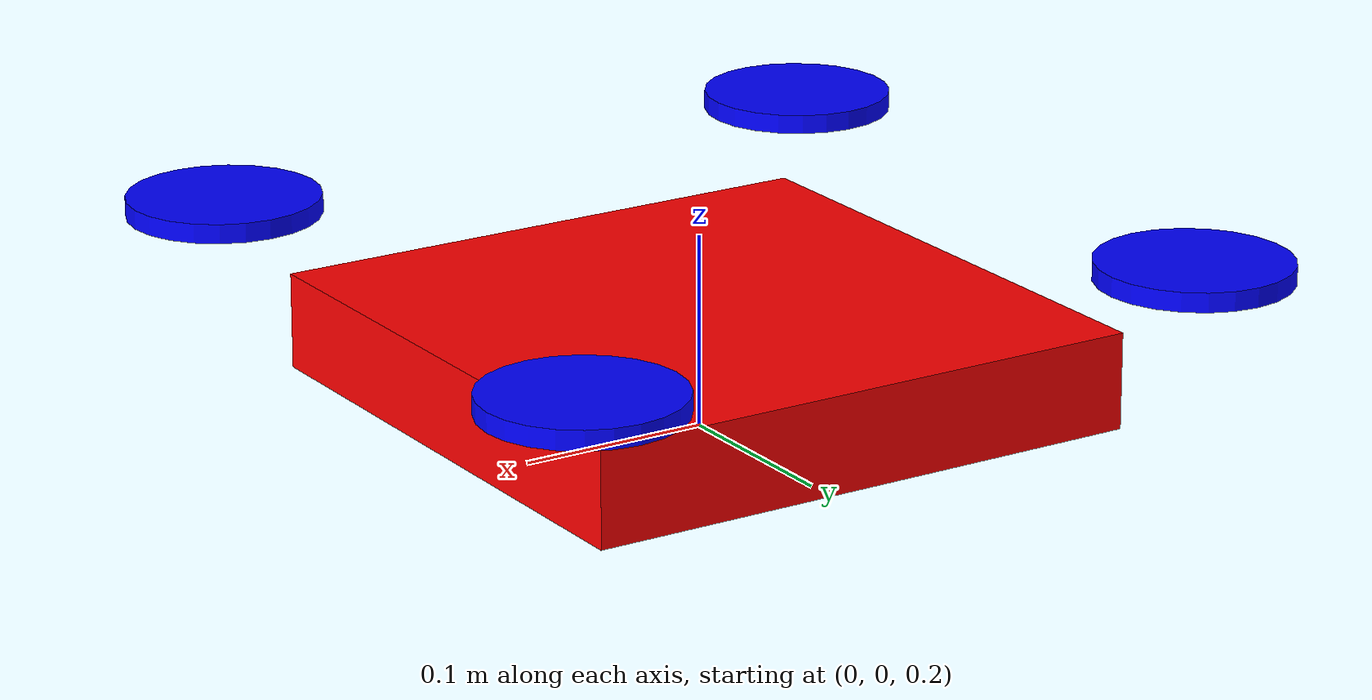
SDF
<?xml version="1.0" encoding="UTF-8"?>
<sdf version="1.9">
  <model name="custom_quad">

    <pose>0 0 0.24 0 0 0</pose>
    <static>false</static>
    <self_collide>false</self_collide>

    <!-- Corpo principale -->
    <link name="base_link">
      <inertial>
        <mass>2.0</mass>
        <inertia>
          <ixx>0.02166666666666667</ixx>
          <iyy>0.02166666666666667</iyy>
          <izz>0.04</izz>
          <ixy>0</ixy>
          <ixz>0</ixz>
          <iyz>0</iyz>
        </inertia>
      </inertial>

      <visual name="body_visual">
        <geometry>
          <box>
            <size>0.3 0.3 0.05</size>
          </box>
        </geometry>
        <material>
          <ambient>1 0 0 1</ambient>
          <diffuse>1 0 0 1</diffuse>
        </material>
      </visual>

      <collision name="body_collision">
        <geometry>
          <box>
            <size>0.3 0.3 0.05</size>
          </box>
        </geometry>
      </collision>

      <!-- Sensori -->
      <sensor name="imu_sensor" type="imu">
        <always_on>1</always_on>
        <update_rate>250</update_rate>
        <imu>
          <angular_velocity>
            <x><noise type="gaussian"><mean>0</mean><stddev>0.0008726646</stddev></noise></x>
            <y><noise type="gaussian"><mean>0</mean><stddev>0.0008726646</stddev></noise></y>
            <z><noise type="gaussian"><mean>0</mean><stddev>0.0008726646</stddev></noise></z>
          </angular_velocity>
          <linear_acceleration>
            <x><noise type="gaussian"><mean>0</mean><stddev>0.00637</stddev></noise></x>
            <y><noise type="gaussian"><mean>0</mean><stddev>0.00637</stddev></noise></y>
            <z><noise type="gaussian"><mean>0</mean><stddev>0.00686</stddev></noise></z>
          </linear_acceleration>
        </imu>
      </sensor>

      <sensor name="magnetometer_sensor" type="magnetometer">
        <always_on>1</always_on>
        <update_rate>100</update_rate>
        <magnetometer>
          <x><noise type="gaussian"><stddev>0.0001</stddev></noise></x>
          <y><noise type="gaussian"><stddev>0.0001</stddev></noise></y>
          <z><noise type="gaussian"><stddev>0.0001</stddev></noise></z>
        </magnetometer>
      </sensor>

      <sensor name="air_pressure_sensor" type="air_pressure">
        <always_on>1</always_on>
        <update_rate>50</update_rate>
        <air_pressure>
          <pressure>
            <noise type="gaussian"><mean>0</mean><stddev>3</stddev></noise>
          </pressure>
        </air_pressure>
      </sensor>

      <sensor name="navsat_sensor" type="navsat">
        <always_on>1</always_on>
        <update_rate>30</update_rate>
      </sensor>
    </link>

    <!-- Rotori -->
    <link name="rotor_0">
      <pose>0.174 -0.174 0.06 0 0 0</pose>
      <inertial>
        <mass>0.02</mass>
        <inertia><ixx>1e-5</ixx><iyy>1e-5</iyy><izz>1e-5</izz></inertia>
      </inertial>
      <visual name="rotor0_visual">
        <geometry>
          <cylinder><radius>0.05</radius><length>0.01</length></cylinder>
        </geometry>
        <material><ambient>0 0 1 1</ambient><diffuse>0 0 1 1</diffuse></material>
      </visual>
      <collision name="rotor0_collision">
        <geometry>
          <cylinder><radius>0.05</radius><length>0.01</length></cylinder>
        </geometry>
      </collision>
    </link>

    <joint name="rotor_0_joint" type="revolute">
      <parent>base_link</parent>
      <child>rotor_0</child>
      <axis><xyz>0 0 1</xyz></axis>
    </joint>

    <link name="rotor_1">
      <pose>-0.174 0.174 0.06 0 0 0</pose>
      <inertial>
        <mass>0.02</mass>
        <inertia><ixx>1e-5</ixx><iyy>1e-5</iyy><izz>1e-5</izz></inertia>
      </inertial>
      <visual name="rotor1_visual">
        <geometry>
          <cylinder><radius>0.05</radius><length>0.01</length></cylinder>
        </geometry>
        <material><ambient>0 0 1 1</ambient><diffuse>0 0 1 1</diffuse></material>
      </visual>
      <collision name="rotor1_collision">
        <geometry>
          <cylinder><radius>0.05</radius><length>0.01</length></cylinder>
        </geometry>
      </collision>
    </link>

    <joint name="rotor_1_joint" type="revolute">
      <parent>base_link</parent>
      <child>rotor_1</child>
      <axis><xyz>0 0 1</xyz></axis>
    </joint>

    <link name="rotor_2">
      <pose>0.174 0.174 0.06 0 0 0</pose>
      <inertial>
        <mass>0.02</mass>
        <inertia><ixx>1e-5</ixx><iyy>1e-5</iyy><izz>1e-5</izz></inertia>
      </inertial>
      <visual name="rotor2_visual">
        <geometry>
          <cylinder><radius>0.05</radius><length>0.01</length></cylinder>
        </geometry>
        <material><ambient>0 0 1 1</ambient><diffuse>0 0 1 1</diffuse></material>
      </visual>
      <collision name="rotor2_collision">
        <geometry>
          <cylinder><radius>0.05</radius><length>0.01</length></cylinder>
        </geometry>
      </collision>
    </link>

    <joint name="rotor_2_joint" type="revolute">
      <parent>base_link</parent>
      <child>rotor_2</child>
      <axis><xyz>0 0 1</xyz></axis>
    </joint>

    <link name="rotor_3">
      <pose>-0.174 -0.174 0.06 0 0 0</pose>
      <inertial>
        <mass>0.02</mass>
        <inertia><ixx>1e-5</ixx><iyy>1e-5</iyy><izz>1e-5</izz></inertia>
      </inertial>
      <visual name="rotor3_visual">
        <geometry>
          <cylinder><radius>0.05</radius><length>0.01</length></cylinder>
        </geometry>
        <material><ambient>0 0 1 1</ambient><diffuse>0 0 1 1</diffuse></material>
      </visual>
      <collision name="rotor3_collision">
        <geometry>
          <cylinder><radius>0.05</radius><length>0.01</length></cylinder>
        </geometry>
      </collision>
    </link>

    <joint name="rotor_3_joint" type="revolute">
      <parent>base_link</parent>
      <child>rotor_3</child>
      <axis><xyz>0 0 1</xyz></axis>
    </joint>

     <plugin filename="gz-sim-multicopter-motor-model-system" name="gz::sim::systems::MulticopterMotorModel">
      <jointName>rotor_0_joint</jointName>
      <linkName>rotor_0</linkName>
      <turningDirection>ccw</turningDirection>
      <timeConstantUp>0.0125</timeConstantUp>
      <timeConstantDown>0.025</timeConstantDown>
      <maxRotVelocity>1000.0</maxRotVelocity>
      <motorConstant>8.54858e-06</motorConstant>
      <momentConstant>0.016</momentConstant>
      <commandSubTopic>command/motor_speed</commandSubTopic>
      <motorNumber>0</motorNumber>
      <rotorDragCoefficient>8.06428e-05</rotorDragCoefficient>
      <rollingMomentCoefficient>1e-06</rollingMomentCoefficient>
      <rotorVelocitySlowdownSim>10</rotorVelocitySlowdownSim>
      <motorType>velocity</motorType>
    </plugin>
    <plugin filename="gz-sim-multicopter-motor-model-system" name="gz::sim::systems::MulticopterMotorModel">
      <jointName>rotor_1_joint</jointName>
      <linkName>rotor_1</linkName>
      <turningDirection>ccw</turningDirection>
      <timeConstantUp>0.0125</timeConstantUp>
      <timeConstantDown>0.025</timeConstantDown>
      <maxRotVelocity>1000.0</maxRotVelocity>
      <motorConstant>8.54858e-06</motorConstant>
      <momentConstant>0.016</momentConstant>
      <commandSubTopic>command/motor_speed</commandSubTopic>
      <motorNumber>1</motorNumber>
      <rotorDragCoefficient>8.06428e-05</rotorDragCoefficient>
      <rollingMomentCoefficient>1e-06</rollingMomentCoefficient>
      <rotorVelocitySlowdownSim>10</rotorVelocitySlowdownSim>
      <motorType>velocity</motorType>
    </plugin>
    <plugin filename="gz-sim-multicopter-motor-model-system" name="gz::sim::systems::MulticopterMotorModel">
      <jointName>rotor_2_joint</jointName>
      <linkName>rotor_2</linkName>
      <turningDirection>cw</turningDirection>
      <timeConstantUp>0.0125</timeConstantUp>
      <timeConstantDown>0.025</timeConstantDown>
      <maxRotVelocity>1000.0</maxRotVelocity>
      <motorConstant>8.54858e-06</motorConstant>
      <momentConstant>0.016</momentConstant>
      <commandSubTopic>command/motor_speed</commandSubTopic>
      <motorNumber>2</motorNumber>
      <rotorDragCoefficient>8.06428e-05</rotorDragCoefficient>
      <rollingMomentCoefficient>1e-06</rollingMomentCoefficient>
      <rotorVelocitySlowdownSim>10</rotorVelocitySlowdownSim>
      <motorType>velocity</motorType>
    </plugin>
    <plugin filename="gz-sim-multicopter-motor-model-system" name="gz::sim::systems::MulticopterMotorModel">
      <jointName>rotor_3_joint</jointName>
      <linkName>rotor_3</linkName>
      <turningDirection>cw</turningDirection>
      <timeConstantUp>0.0125</timeConstantUp>
      <timeConstantDown>0.025</timeConstantDown>
      <maxRotVelocity>1000.0</maxRotVelocity>
      <motorConstant>8.54858e-06</motorConstant>
      <momentConstant>0.016</momentConstant>
      <commandSubTopic>command/motor_speed</commandSubTopic>
      <motorNumber>3</motorNumber>
      <rotorDragCoefficient>8.06428e-05</rotorDragCoefficient>
      <rollingMomentCoefficient>1e-06</rollingMomentCoefficient>
      <rotorVelocitySlowdownSim>10</rotorVelocitySlowdownSim>
      <motorType>velocity</motorType>
    </plugin>
  </model>
</sdf>
